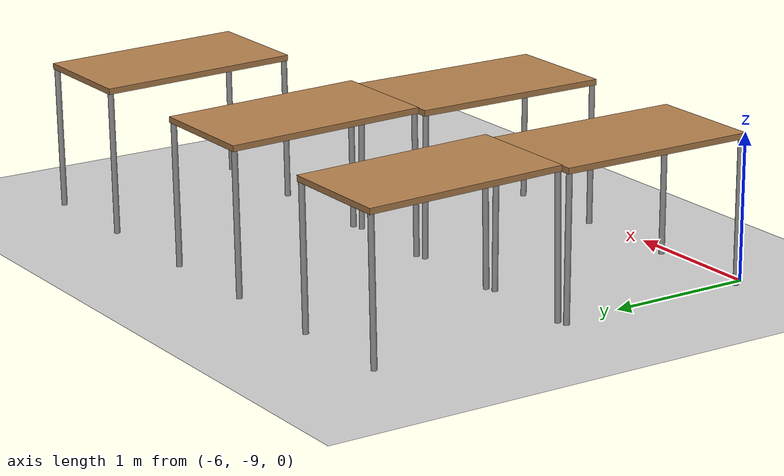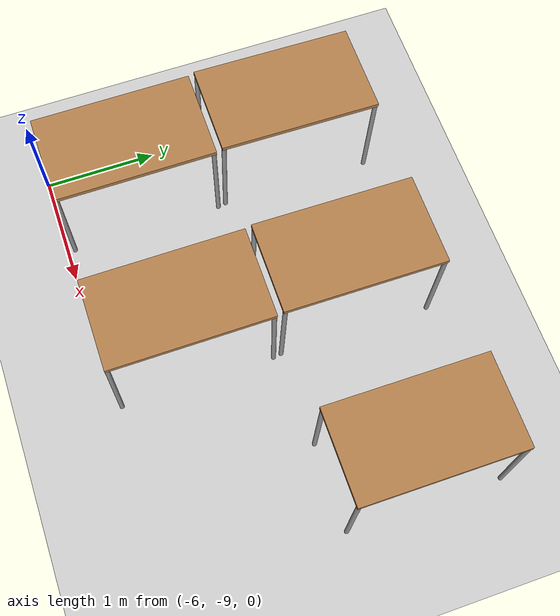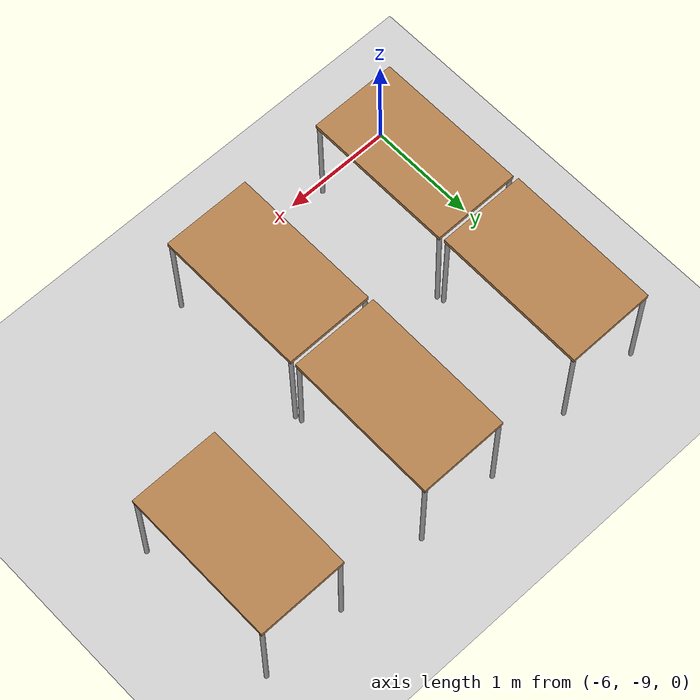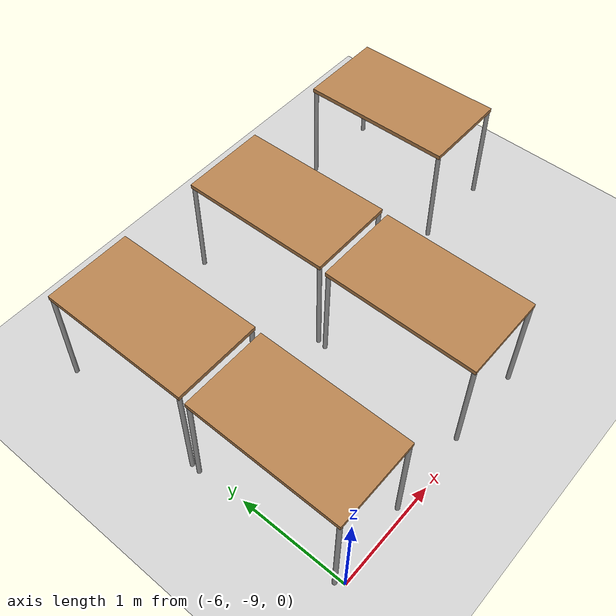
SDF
<sdf version="1.6">
 <world name="default">
  <model name="ground_plane">
   <static>1</static>
   <link name="link">
    <collision name="collision">
     <geometry><plane><normal>0 0 1</normal><size>100 100</size></plane></geometry>
     <surface><friction><ode><mu>100</mu><mu2>50</mu2></ode></friction></surface>
    </collision>
    <visual name="visual">
     <cast_shadows>0</cast_shadows>
     <geometry><plane><normal>0 0 1</normal><size>100 100</size></plane></geometry>
     <material>
      <script><uri>file://media/materials/scripts/gazebo.material</uri><name>Gazebo/Grey</name></script>
     </material>
    </visual>
   </link>
  </model>
  <model name="table_vert_0_clone_clone_clone_0_clone_0_clone_3">
   <link name="link">
    <pose>0 0 0 0 0 -1.56614</pose>
    <inertial>
     <inertia><ixx>1</ixx><ixy>0</ixy><ixz>0</ixz><iyy>1</iyy><iyz>0</iyz><izz>1</izz></inertia>
     <mass>1</mass>
    </inertial>
    <visual name="visual1">
     <pose>0 0 1 0 -0 0</pose>
     <geometry><box><size>1.4 0.8 0.04</size></box></geometry>
     <material>
      <script><uri>file://media/materials/scripts/gazebo.material</uri><name>Gazebo/Wood</name></script>
      <ambient>1 1 1 1</ambient>
      <diffuse>1 1 1 1</diffuse>
      <specular>0.2 0.2 0.2 1</specular>
      <emissive>0 0 0 1</emissive>
     </material>
    </visual>
    <visual name="front_left_leg">
     <pose>0.68 0.38 0.5 0 -0 0</pose>
     <geometry><cylinder><radius>0.02</radius><length>1</length></cylinder></geometry>
     <material>
      <script><uri>file://media/materials/scripts/gazebo.material</uri><name>Gazebo/Grey</name></script>
      <ambient>0.3 0.3 0.3 1</ambient>
      <diffuse>0.7 0.7 0.7 1</diffuse>
      <specular>0.01 0.01 0.01 1</specular>
      <emissive>0 0 0 1</emissive>
     </material>
    </visual>
    <visual name="front_right_leg">
     <pose>0.68 -0.38 0.5 0 -0 0</pose>
     <geometry><cylinder><radius>0.02</radius><length>1</length></cylinder></geometry>
     <material>
      <script><uri>file://media/materials/scripts/gazebo.material</uri><name>Gazebo/Grey</name></script>
      <ambient>0.3 0.3 0.3 1</ambient>
      <diffuse>0.7 0.7 0.7 1</diffuse>
      <specular>0.01 0.01 0.01 1</specular>
      <emissive>0 0 0 1</emissive>
     </material>
    </visual>
    <visual name="back_right_leg">
     <pose>-0.68 -0.38 0.5 0 -0 0</pose>
     <geometry><cylinder><radius>0.02</radius><length>1</length></cylinder></geometry>
     <material>
      <script><uri>file://media/materials/scripts/gazebo.material</uri><name>Gazebo/Grey</name></script>
      <ambient>0.3 0.3 0.3 1</ambient>
      <diffuse>0.7 0.7 0.7 1</diffuse>
      <specular>0.01 0.01 0.01 1</specular>
      <emissive>0 0 0 1</emissive>
     </material>
    </visual>
    <visual name="back_left_leg">
     <pose>-0.68 0.38 0.5 0 -0 0</pose>
     <geometry><cylinder><radius>0.02</radius><length>1</length></cylinder></geometry>
     <material>
      <script><uri>file://media/materials/scripts/gazebo.material</uri><name>Gazebo/Grey</name></script>
      <ambient>0.3 0.3 0.3 1</ambient>
      <diffuse>0.7 0.7 0.7 1</diffuse>
      <specular>0.01 0.01 0.01 1</specular>
      <emissive>0 0 0 1</emissive>
     </material>
    </visual>
    <collision name="surface">
     <pose>0 0 1 0 -0 0</pose>
     <geometry><box><size>1.5 0.8 0.03</size></box></geometry>
     <surface>
      <friction>
       <ode><mu>0.6</mu><mu2>0.6</mu2><fdir1>0 0 0</fdir1><slip1>0</slip1><slip2>0</slip2></ode>
       <torsional>
        <coefficient>1</coefficient>
        <patch_radius>0</patch_radius>
        <surface_radius>0</surface_radius>
        <use_patch_radius>1</use_patch_radius>
        <ode><slip>0</slip></ode>
       </torsional>
      </friction>
      <bounce><restitution_coefficient>0</restitution_coefficient><threshold>1e+06</threshold></bounce>
      <contact>
       <collide_without_contact>0</collide_without_contact>
       <collide_without_contact_bitmask>1</collide_without_contact_bitmask>
       <collide_bitmask>1</collide_bitmask>
       <ode>
        <soft_cfm>0</soft_cfm>
        <soft_erp>0.2</soft_erp>
        <kp>1e+13</kp>
        <kd>1</kd>
        <max_vel>0.01</max_vel>
        <min_depth>0</min_depth>
       </ode>
       <bullet>
        <split_impulse>1</split_impulse>
        <split_impulse_penetration_threshold>-0.01</split_impulse_penetration_threshold>
        <soft_cfm>0</soft_cfm>
        <soft_erp>0.2</soft_erp>
        <kp>1e+13</kp>
        <kd>1</kd>
       </bullet>
      </contact>
     </surface>
    </collision>
    <collision name="front_left_leg">
     <pose>0.68 0.38 0.5 0 -0 0</pose>
     <geometry><cylinder><radius>0.02</radius><length>1</length></cylinder></geometry>
     <surface>
      <friction>
       <ode><mu>1</mu><mu2>1</mu2><fdir1>0 0 0</fdir1><slip1>0</slip1><slip2>0</slip2></ode>
       <torsional>
        <coefficient>1</coefficient>
        <patch_radius>0</patch_radius>
        <surface_radius>0</surface_radius>
        <use_patch_radius>1</use_patch_radius>
        <ode><slip>0</slip></ode>
       </torsional>
      </friction>
      <bounce><restitution_coefficient>0</restitution_coefficient><threshold>1e+06</threshold></bounce>
      <contact>
       <collide_without_contact>0</collide_without_contact>
       <collide_without_contact_bitmask>1</collide_without_contact_bitmask>
       <collide_bitmask>1</collide_bitmask>
       <ode>
        <soft_cfm>0</soft_cfm>
        <soft_erp>0.2</soft_erp>
        <kp>1e+13</kp>
        <kd>1</kd>
        <max_vel>0.01</max_vel>
        <min_depth>0</min_depth>
       </ode>
       <bullet>
        <split_impulse>1</split_impulse>
        <split_impulse_penetration_threshold>-0.01</split_impulse_penetration_threshold>
        <soft_cfm>0</soft_cfm>
        <soft_erp>0.2</soft_erp>
        <kp>1e+13</kp>
        <kd>1</kd>
       </bullet>
      </contact>
     </surface>
    </collision>
    <collision name="front_right_leg">
     <pose>0.68 -0.38 0.5 0 -0 0</pose>
     <geometry><cylinder><radius>0.02</radius><length>1</length></cylinder></geometry>
     <surface>
      <friction>
       <ode><mu>1</mu><mu2>1</mu2><fdir1>0 0 0</fdir1><slip1>0</slip1><slip2>0</slip2></ode>
       <torsional>
        <coefficient>1</coefficient>
        <patch_radius>0</patch_radius>
        <surface_radius>0</surface_radius>
        <use_patch_radius>1</use_patch_radius>
        <ode><slip>0</slip></ode>
       </torsional>
      </friction>
      <bounce><restitution_coefficient>0</restitution_coefficient><threshold>1e+06</threshold></bounce>
      <contact>
       <collide_without_contact>0</collide_without_contact>
       <collide_without_contact_bitmask>1</collide_without_contact_bitmask>
       <collide_bitmask>1</collide_bitmask>
       <ode>
        <soft_cfm>0</soft_cfm>
        <soft_erp>0.2</soft_erp>
        <kp>1e+13</kp>
        <kd>1</kd>
        <max_vel>0.01</max_vel>
        <min_depth>0</min_depth>
       </ode>
       <bullet>
        <split_impulse>1</split_impulse>
        <split_impulse_penetration_threshold>-0.01</split_impulse_penetration_threshold>
        <soft_cfm>0</soft_cfm>
        <soft_erp>0.2</soft_erp>
        <kp>1e+13</kp>
        <kd>1</kd>
       </bullet>
      </contact>
     </surface>
    </collision>
    <collision name="back_right_leg">
     <pose>-0.68 -0.38 0.5 0 -0 0</pose>
     <geometry><cylinder><radius>0.02</radius><length>1</length></cylinder></geometry>
     <surface>
      <friction>
       <ode><mu>1</mu><mu2>1</mu2><fdir1>0 0 0</fdir1><slip1>0</slip1><slip2>0</slip2></ode>
       <torsional>
        <coefficient>1</coefficient>
        <patch_radius>0</patch_radius>
        <surface_radius>0</surface_radius>
        <use_patch_radius>1</use_patch_radius>
        <ode><slip>0</slip></ode>
       </torsional>
      </friction>
      <bounce><restitution_coefficient>0</restitution_coefficient><threshold>1e+06</threshold></bounce>
      <contact>
       <collide_without_contact>0</collide_without_contact>
       <collide_without_contact_bitmask>1</collide_without_contact_bitmask>
       <collide_bitmask>1</collide_bitmask>
       <ode>
        <soft_cfm>0</soft_cfm>
        <soft_erp>0.2</soft_erp>
        <kp>1e+13</kp>
        <kd>1</kd>
        <max_vel>0.01</max_vel>
        <min_depth>0</min_depth>
       </ode>
       <bullet>
        <split_impulse>1</split_impulse>
        <split_impulse_penetration_threshold>-0.01</split_impulse_penetration_threshold>
        <soft_cfm>0</soft_cfm>
        <soft_erp>0.2</soft_erp>
        <kp>1e+13</kp>
        <kd>1</kd>
       </bullet>
      </contact>
     </surface>
    </collision>
    <collision name="back_left_leg">
     <pose>-0.68 0.38 0.5 0 -0 0</pose>
     <geometry><cylinder><radius>0.02</radius><length>1</length></cylinder></geometry>
     <surface>
      <friction>
       <ode><mu>1</mu><mu2>1</mu2><fdir1>0 0 0</fdir1><slip1>0</slip1><slip2>0</slip2></ode>
       <torsional>
        <coefficient>1</coefficient>
        <patch_radius>0</patch_radius>
        <surface_radius>0</surface_radius>
        <use_patch_radius>1</use_patch_radius>
        <ode><slip>0</slip></ode>
       </torsional>
      </friction>
      <bounce><restitution_coefficient>0</restitution_coefficient><threshold>1e+06</threshold></bounce>
      <contact>
       <collide_without_contact>0</collide_without_contact>
       <collide_without_contact_bitmask>1</collide_without_contact_bitmask>
       <collide_bitmask>1</collide_bitmask>
       <ode>
        <soft_cfm>0</soft_cfm>
        <soft_erp>0.2</soft_erp>
        <kp>1e+13</kp>
        <kd>1</kd>
        <max_vel>0.01</max_vel>
        <min_depth>0</min_depth>
       </ode>
       <bullet>
        <split_impulse>1</split_impulse>
        <split_impulse_penetration_threshold>-0.01</split_impulse_penetration_threshold>
        <soft_cfm>0</soft_cfm>
        <soft_erp>0.2</soft_erp>
        <kp>1e+13</kp>
        <kd>1</kd>
       </bullet>
      </contact>
     </surface>
    </collision>
   </link>
   <static>0</static>
   <pose>-2.51001 -6.82268 0.015095 -0.021565 -9.9e-05 -0.004656</pose>
  </model>
  <model name="table_vert_0_clone_clone_clone_0_clone_0_clone_3_clone">
   <link name="link">
    <pose>0 0 0 0 0 -1.56614</pose>
    <inertial>
     <inertia><ixx>1</ixx><ixy>0</ixy><ixz>0</ixz><iyy>1</iyy><iyz>0</iyz><izz>1</izz></inertia>
     <mass>1</mass>
    </inertial>
    <visual name="visual1">
     <pose>0 0 1 0 -0 0</pose>
     <geometry><box><size>1.4 0.8 0.04</size></box></geometry>
     <material>
      <script><uri>file://media/materials/scripts/gazebo.material</uri><name>Gazebo/Wood</name></script>
      <ambient>1 1 1 1</ambient>
      <diffuse>1 1 1 1</diffuse>
      <specular>0.2 0.2 0.2 1</specular>
      <emissive>0 0 0 1</emissive>
     </material>
    </visual>
    <visual name="front_left_leg">
     <pose>0.68 0.38 0.5 0 -0 0</pose>
     <geometry><cylinder><radius>0.02</radius><length>1</length></cylinder></geometry>
     <material>
      <script><uri>file://media/materials/scripts/gazebo.material</uri><name>Gazebo/Grey</name></script>
      <ambient>0.3 0.3 0.3 1</ambient>
      <diffuse>0.7 0.7 0.7 1</diffuse>
      <specular>0.01 0.01 0.01 1</specular>
      <emissive>0 0 0 1</emissive>
     </material>
    </visual>
    <visual name="front_right_leg">
     <pose>0.68 -0.38 0.5 0 -0 0</pose>
     <geometry><cylinder><radius>0.02</radius><length>1</length></cylinder></geometry>
     <material>
      <script><uri>file://media/materials/scripts/gazebo.material</uri><name>Gazebo/Grey</name></script>
      <ambient>0.3 0.3 0.3 1</ambient>
      <diffuse>0.7 0.7 0.7 1</diffuse>
      <specular>0.01 0.01 0.01 1</specular>
      <emissive>0 0 0 1</emissive>
     </material>
    </visual>
    <visual name="back_right_leg">
     <pose>-0.68 -0.38 0.5 0 -0 0</pose>
     <geometry><cylinder><radius>0.02</radius><length>1</length></cylinder></geometry>
     <material>
      <script><uri>file://media/materials/scripts/gazebo.material</uri><name>Gazebo/Grey</name></script>
      <ambient>0.3 0.3 0.3 1</ambient>
      <diffuse>0.7 0.7 0.7 1</diffuse>
      <specular>0.01 0.01 0.01 1</specular>
      <emissive>0 0 0 1</emissive>
     </material>
    </visual>
    <visual name="back_left_leg">
     <pose>-0.68 0.38 0.5 0 -0 0</pose>
     <geometry><cylinder><radius>0.02</radius><length>1</length></cylinder></geometry>
     <material>
      <script><uri>file://media/materials/scripts/gazebo.material</uri><name>Gazebo/Grey</name></script>
      <ambient>0.3 0.3 0.3 1</ambient>
      <diffuse>0.7 0.7 0.7 1</diffuse>
      <specular>0.01 0.01 0.01 1</specular>
      <emissive>0 0 0 1</emissive>
     </material>
    </visual>
    <collision name="surface">
     <pose>0 0 1 0 -0 0</pose>
     <geometry><box><size>1.5 0.8 0.03</size></box></geometry>
     <surface>
      <friction>
       <ode><mu>0.6</mu><mu2>0.6</mu2><fdir1>0 0 0</fdir1><slip1>0</slip1><slip2>0</slip2></ode>
       <torsional>
        <coefficient>1</coefficient>
        <patch_radius>0</patch_radius>
        <surface_radius>0</surface_radius>
        <use_patch_radius>1</use_patch_radius>
        <ode><slip>0</slip></ode>
       </torsional>
      </friction>
      <bounce><restitution_coefficient>0</restitution_coefficient><threshold>1e+06</threshold></bounce>
      <contact>
       <collide_without_contact>0</collide_without_contact>
       <collide_without_contact_bitmask>1</collide_without_contact_bitmask>
       <collide_bitmask>1</collide_bitmask>
       <ode>
        <soft_cfm>0</soft_cfm>
        <soft_erp>0.2</soft_erp>
        <kp>1e+13</kp>
        <kd>1</kd>
        <max_vel>0.01</max_vel>
        <min_depth>0</min_depth>
       </ode>
       <bullet>
        <split_impulse>1</split_impulse>
        <split_impulse_penetration_threshold>-0.01</split_impulse_penetration_threshold>
        <soft_cfm>0</soft_cfm>
        <soft_erp>0.2</soft_erp>
        <kp>1e+13</kp>
        <kd>1</kd>
       </bullet>
      </contact>
     </surface>
    </collision>
    <collision name="front_left_leg">
     <pose>0.68 0.38 0.5 0 -0 0</pose>
     <geometry><cylinder><radius>0.02</radius><length>1</length></cylinder></geometry>
     <surface>
      <friction>
       <ode><mu>1</mu><mu2>1</mu2><fdir1>0 0 0</fdir1><slip1>0</slip1><slip2>0</slip2></ode>
       <torsional>
        <coefficient>1</coefficient>
        <patch_radius>0</patch_radius>
        <surface_radius>0</surface_radius>
        <use_patch_radius>1</use_patch_radius>
        <ode><slip>0</slip></ode>
       </torsional>
      </friction>
      <bounce><restitution_coefficient>0</restitution_coefficient><threshold>1e+06</threshold></bounce>
      <contact>
       <collide_without_contact>0</collide_without_contact>
       <collide_without_contact_bitmask>1</collide_without_contact_bitmask>
       <collide_bitmask>1</collide_bitmask>
       <ode>
        <soft_cfm>0</soft_cfm>
        <soft_erp>0.2</soft_erp>
        <kp>1e+13</kp>
        <kd>1</kd>
        <max_vel>0.01</max_vel>
        <min_depth>0</min_depth>
       </ode>
       <bullet>
        <split_impulse>1</split_impulse>
        <split_impulse_penetration_threshold>-0.01</split_impulse_penetration_threshold>
        <soft_cfm>0</soft_cfm>
        <soft_erp>0.2</soft_erp>
        <kp>1e+13</kp>
        <kd>1</kd>
       </bullet>
      </contact>
     </surface>
    </collision>
    <collision name="front_right_leg">
     <pose>0.68 -0.38 0.5 0 -0 0</pose>
     <geometry><cylinder><radius>0.02</radius><length>1</length></cylinder></geometry>
     <surface>
      <friction>
       <ode><mu>1</mu><mu2>1</mu2><fdir1>0 0 0</fdir1><slip1>0</slip1><slip2>0</slip2></ode>
       <torsional>
        <coefficient>1</coefficient>
        <patch_radius>0</patch_radius>
        <surface_radius>0</surface_radius>
        <use_patch_radius>1</use_patch_radius>
        <ode><slip>0</slip></ode>
       </torsional>
      </friction>
      <bounce><restitution_coefficient>0</restitution_coefficient><threshold>1e+06</threshold></bounce>
      <contact>
       <collide_without_contact>0</collide_without_contact>
       <collide_without_contact_bitmask>1</collide_without_contact_bitmask>
       <collide_bitmask>1</collide_bitmask>
       <ode>
        <soft_cfm>0</soft_cfm>
        <soft_erp>0.2</soft_erp>
        <kp>1e+13</kp>
        <kd>1</kd>
        <max_vel>0.01</max_vel>
        <min_depth>0</min_depth>
       </ode>
       <bullet>
        <split_impulse>1</split_impulse>
        <split_impulse_penetration_threshold>-0.01</split_impulse_penetration_threshold>
        <soft_cfm>0</soft_cfm>
        <soft_erp>0.2</soft_erp>
        <kp>1e+13</kp>
        <kd>1</kd>
       </bullet>
      </contact>
     </surface>
    </collision>
    <collision name="back_right_leg">
     <pose>-0.68 -0.38 0.5 0 -0 0</pose>
     <geometry><cylinder><radius>0.02</radius><length>1</length></cylinder></geometry>
     <surface>
      <friction>
       <ode><mu>1</mu><mu2>1</mu2><fdir1>0 0 0</fdir1><slip1>0</slip1><slip2>0</slip2></ode>
       <torsional>
        <coefficient>1</coefficient>
        <patch_radius>0</patch_radius>
        <surface_radius>0</surface_radius>
        <use_patch_radius>1</use_patch_radius>
        <ode><slip>0</slip></ode>
       </torsional>
      </friction>
      <bounce><restitution_coefficient>0</restitution_coefficient><threshold>1e+06</threshold></bounce>
      <contact>
       <collide_without_contact>0</collide_without_contact>
       <collide_without_contact_bitmask>1</collide_without_contact_bitmask>
       <collide_bitmask>1</collide_bitmask>
       <ode>
        <soft_cfm>0</soft_cfm>
        <soft_erp>0.2</soft_erp>
        <kp>1e+13</kp>
        <kd>1</kd>
        <max_vel>0.01</max_vel>
        <min_depth>0</min_depth>
       </ode>
       <bullet>
        <split_impulse>1</split_impulse>
        <split_impulse_penetration_threshold>-0.01</split_impulse_penetration_threshold>
        <soft_cfm>0</soft_cfm>
        <soft_erp>0.2</soft_erp>
        <kp>1e+13</kp>
        <kd>1</kd>
       </bullet>
      </contact>
     </surface>
    </collision>
    <collision name="back_left_leg">
     <pose>-0.68 0.38 0.5 0 -0 0</pose>
     <geometry><cylinder><radius>0.02</radius><length>1</length></cylinder></geometry>
     <surface>
      <friction>
       <ode><mu>1</mu><mu2>1</mu2><fdir1>0 0 0</fdir1><slip1>0</slip1><slip2>0</slip2></ode>
       <torsional>
        <coefficient>1</coefficient>
        <patch_radius>0</patch_radius>
        <surface_radius>0</surface_radius>
        <use_patch_radius>1</use_patch_radius>
        <ode><slip>0</slip></ode>
       </torsional>
      </friction>
      <bounce><restitution_coefficient>0</restitution_coefficient><threshold>1e+06</threshold></bounce>
      <contact>
       <collide_without_contact>0</collide_without_contact>
       <collide_without_contact_bitmask>1</collide_without_contact_bitmask>
       <collide_bitmask>1</collide_bitmask>
       <ode>
        <soft_cfm>0</soft_cfm>
        <soft_erp>0.2</soft_erp>
        <kp>1e+13</kp>
        <kd>1</kd>
        <max_vel>0.01</max_vel>
        <min_depth>0</min_depth>
       </ode>
       <bullet>
        <split_impulse>1</split_impulse>
        <split_impulse_penetration_threshold>-0.01</split_impulse_penetration_threshold>
        <soft_cfm>0</soft_cfm>
        <soft_erp>0.2</soft_erp>
        <kp>1e+13</kp>
        <kd>1</kd>
       </bullet>
      </contact>
     </surface>
    </collision>
   </link>
   <static>0</static>
   <pose>-4.11064 -8.25191 -3e-06 -4e-06 -2e-06 -0.004657</pose>
  </model>
  <model name="table_vert_0_clone_clone_clone_0_clone_0_clone_3_clone_0">
   <link name="link">
    <pose>0 0 0 0 0 -1.56614</pose>
    <inertial>
     <inertia><ixx>1</ixx><ixy>0</ixy><ixz>0</ixz><iyy>1</iyy><iyz>0</iyz><izz>1</izz></inertia>
     <mass>1</mass>
    </inertial>
    <visual name="visual1">
     <pose>0 0 1 0 -0 0</pose>
     <geometry><box><size>1.4 0.8 0.04</size></box></geometry>
     <material>
      <script><uri>file://media/materials/scripts/gazebo.material</uri><name>Gazebo/Wood</name></script>
      <ambient>1 1 1 1</ambient>
      <diffuse>1 1 1 1</diffuse>
      <specular>0.2 0.2 0.2 1</specular>
      <emissive>0 0 0 1</emissive>
     </material>
    </visual>
    <visual name="front_left_leg">
     <pose>0.68 0.38 0.5 0 -0 0</pose>
     <geometry><cylinder><radius>0.02</radius><length>1</length></cylinder></geometry>
     <material>
      <script><uri>file://media/materials/scripts/gazebo.material</uri><name>Gazebo/Grey</name></script>
      <ambient>0.3 0.3 0.3 1</ambient>
      <diffuse>0.7 0.7 0.7 1</diffuse>
      <specular>0.01 0.01 0.01 1</specular>
      <emissive>0 0 0 1</emissive>
     </material>
    </visual>
    <visual name="front_right_leg">
     <pose>0.68 -0.38 0.5 0 -0 0</pose>
     <geometry><cylinder><radius>0.02</radius><length>1</length></cylinder></geometry>
     <material>
      <script><uri>file://media/materials/scripts/gazebo.material</uri><name>Gazebo/Grey</name></script>
      <ambient>0.3 0.3 0.3 1</ambient>
      <diffuse>0.7 0.7 0.7 1</diffuse>
      <specular>0.01 0.01 0.01 1</specular>
      <emissive>0 0 0 1</emissive>
     </material>
    </visual>
    <visual name="back_right_leg">
     <pose>-0.68 -0.38 0.5 0 -0 0</pose>
     <geometry><cylinder><radius>0.02</radius><length>1</length></cylinder></geometry>
     <material>
      <script><uri>file://media/materials/scripts/gazebo.material</uri><name>Gazebo/Grey</name></script>
      <ambient>0.3 0.3 0.3 1</ambient>
      <diffuse>0.7 0.7 0.7 1</diffuse>
      <specular>0.01 0.01 0.01 1</specular>
      <emissive>0 0 0 1</emissive>
     </material>
    </visual>
    <visual name="back_left_leg">
     <pose>-0.68 0.38 0.5 0 -0 0</pose>
     <geometry><cylinder><radius>0.02</radius><length>1</length></cylinder></geometry>
     <material>
      <script><uri>file://media/materials/scripts/gazebo.material</uri><name>Gazebo/Grey</name></script>
      <ambient>0.3 0.3 0.3 1</ambient>
      <diffuse>0.7 0.7 0.7 1</diffuse>
      <specular>0.01 0.01 0.01 1</specular>
      <emissive>0 0 0 1</emissive>
     </material>
    </visual>
    <collision name="surface">
     <pose>0 0 1 0 -0 0</pose>
     <geometry><box><size>1.5 0.8 0.03</size></box></geometry>
     <surface>
      <friction>
       <ode><mu>0.6</mu><mu2>0.6</mu2><fdir1>0 0 0</fdir1><slip1>0</slip1><slip2>0</slip2></ode>
       <torsional>
        <coefficient>1</coefficient>
        <patch_radius>0</patch_radius>
        <surface_radius>0</surface_radius>
        <use_patch_radius>1</use_patch_radius>
        <ode><slip>0</slip></ode>
       </torsional>
      </friction>
      <bounce><restitution_coefficient>0</restitution_coefficient><threshold>1e+06</threshold></bounce>
      <contact>
       <collide_without_contact>0</collide_without_contact>
       <collide_without_contact_bitmask>1</collide_without_contact_bitmask>
       <collide_bitmask>1</collide_bitmask>
       <ode>
        <soft_cfm>0</soft_cfm>
        <soft_erp>0.2</soft_erp>
        <kp>1e+13</kp>
        <kd>1</kd>
        <max_vel>0.01</max_vel>
        <min_depth>0</min_depth>
       </ode>
       <bullet>
        <split_impulse>1</split_impulse>
        <split_impulse_penetration_threshold>-0.01</split_impulse_penetration_threshold>
        <soft_cfm>0</soft_cfm>
        <soft_erp>0.2</soft_erp>
        <kp>1e+13</kp>
        <kd>1</kd>
       </bullet>
      </contact>
     </surface>
    </collision>
    <collision name="front_left_leg">
     <pose>0.68 0.38 0.5 0 -0 0</pose>
     <geometry><cylinder><radius>0.02</radius><length>1</length></cylinder></geometry>
     <surface>
      <friction>
       <ode><mu>1</mu><mu2>1</mu2><fdir1>0 0 0</fdir1><slip1>0</slip1><slip2>0</slip2></ode>
       <torsional>
        <coefficient>1</coefficient>
        <patch_radius>0</patch_radius>
        <surface_radius>0</surface_radius>
        <use_patch_radius>1</use_patch_radius>
        <ode><slip>0</slip></ode>
       </torsional>
      </friction>
      <bounce><restitution_coefficient>0</restitution_coefficient><threshold>1e+06</threshold></bounce>
      <contact>
       <collide_without_contact>0</collide_without_contact>
       <collide_without_contact_bitmask>1</collide_without_contact_bitmask>
       <collide_bitmask>1</collide_bitmask>
       <ode>
        <soft_cfm>0</soft_cfm>
        <soft_erp>0.2</soft_erp>
        <kp>1e+13</kp>
        <kd>1</kd>
        <max_vel>0.01</max_vel>
        <min_depth>0</min_depth>
       </ode>
       <bullet>
        <split_impulse>1</split_impulse>
        <split_impulse_penetration_threshold>-0.01</split_impulse_penetration_threshold>
        <soft_cfm>0</soft_cfm>
        <soft_erp>0.2</soft_erp>
        <kp>1e+13</kp>
        <kd>1</kd>
       </bullet>
      </contact>
     </surface>
    </collision>
    <collision name="front_right_leg">
     <pose>0.68 -0.38 0.5 0 -0 0</pose>
     <geometry><cylinder><radius>0.02</radius><length>1</length></cylinder></geometry>
     <surface>
      <friction>
       <ode><mu>1</mu><mu2>1</mu2><fdir1>0 0 0</fdir1><slip1>0</slip1><slip2>0</slip2></ode>
       <torsional>
        <coefficient>1</coefficient>
        <patch_radius>0</patch_radius>
        <surface_radius>0</surface_radius>
        <use_patch_radius>1</use_patch_radius>
        <ode><slip>0</slip></ode>
       </torsional>
      </friction>
      <bounce><restitution_coefficient>0</restitution_coefficient><threshold>1e+06</threshold></bounce>
      <contact>
       <collide_without_contact>0</collide_without_contact>
       <collide_without_contact_bitmask>1</collide_without_contact_bitmask>
       <collide_bitmask>1</collide_bitmask>
       <ode>
        <soft_cfm>0</soft_cfm>
        <soft_erp>0.2</soft_erp>
        <kp>1e+13</kp>
        <kd>1</kd>
        <max_vel>0.01</max_vel>
        <min_depth>0</min_depth>
       </ode>
       <bullet>
        <split_impulse>1</split_impulse>
        <split_impulse_penetration_threshold>-0.01</split_impulse_penetration_threshold>
        <soft_cfm>0</soft_cfm>
        <soft_erp>0.2</soft_erp>
        <kp>1e+13</kp>
        <kd>1</kd>
       </bullet>
      </contact>
     </surface>
    </collision>
    <collision name="back_right_leg">
     <pose>-0.68 -0.38 0.5 0 -0 0</pose>
     <geometry><cylinder><radius>0.02</radius><length>1</length></cylinder></geometry>
     <surface>
      <friction>
       <ode><mu>1</mu><mu2>1</mu2><fdir1>0 0 0</fdir1><slip1>0</slip1><slip2>0</slip2></ode>
       <torsional>
        <coefficient>1</coefficient>
        <patch_radius>0</patch_radius>
        <surface_radius>0</surface_radius>
        <use_patch_radius>1</use_patch_radius>
        <ode><slip>0</slip></ode>
       </torsional>
      </friction>
      <bounce><restitution_coefficient>0</restitution_coefficient><threshold>1e+06</threshold></bounce>
      <contact>
       <collide_without_contact>0</collide_without_contact>
       <collide_without_contact_bitmask>1</collide_without_contact_bitmask>
       <collide_bitmask>1</collide_bitmask>
       <ode>
        <soft_cfm>0</soft_cfm>
        <soft_erp>0.2</soft_erp>
        <kp>1e+13</kp>
        <kd>1</kd>
        <max_vel>0.01</max_vel>
        <min_depth>0</min_depth>
       </ode>
       <bullet>
        <split_impulse>1</split_impulse>
        <split_impulse_penetration_threshold>-0.01</split_impulse_penetration_threshold>
        <soft_cfm>0</soft_cfm>
        <soft_erp>0.2</soft_erp>
        <kp>1e+13</kp>
        <kd>1</kd>
       </bullet>
      </contact>
     </surface>
    </collision>
    <collision name="back_left_leg">
     <pose>-0.68 0.38 0.5 0 -0 0</pose>
     <geometry><cylinder><radius>0.02</radius><length>1</length></cylinder></geometry>
     <surface>
      <friction>
       <ode><mu>1</mu><mu2>1</mu2><fdir1>0 0 0</fdir1><slip1>0</slip1><slip2>0</slip2></ode>
       <torsional>
        <coefficient>1</coefficient>
        <patch_radius>0</patch_radius>
        <surface_radius>0</surface_radius>
        <use_patch_radius>1</use_patch_radius>
        <ode><slip>0</slip></ode>
       </torsional>
      </friction>
      <bounce><restitution_coefficient>0</restitution_coefficient><threshold>1e+06</threshold></bounce>
      <contact>
       <collide_without_contact>0</collide_without_contact>
       <collide_without_contact_bitmask>1</collide_without_contact_bitmask>
       <collide_bitmask>1</collide_bitmask>
       <ode>
        <soft_cfm>0</soft_cfm>
        <soft_erp>0.2</soft_erp>
        <kp>1e+13</kp>
        <kd>1</kd>
        <max_vel>0.01</max_vel>
        <min_depth>0</min_depth>
       </ode>
       <bullet>
        <split_impulse>1</split_impulse>
        <split_impulse_penetration_threshold>-0.01</split_impulse_penetration_threshold>
        <soft_cfm>0</soft_cfm>
        <soft_erp>0.2</soft_erp>
        <kp>1e+13</kp>
        <kd>1</kd>
       </bullet>
      </contact>
     </surface>
    </collision>
   </link>
   <static>0</static>
   <pose>-4.11314 -6.82268 0.015105 -0.02158 -9.8e-05 -0.004659</pose>
  </model>
  <model name="table_vert_0_clone_clone_clone_0_clone_0_clone_3_clone_1">
   <link name="link">
    <pose>0 0 0 0 0 -1.56614</pose>
    <inertial>
     <inertia><ixx>1</ixx><ixy>0</ixy><ixz>0</ixz><iyy>1</iyy><iyz>0</iyz><izz>1</izz></inertia>
     <mass>1</mass>
    </inertial>
    <visual name="visual1">
     <pose>0 0 1 0 -0 0</pose>
     <geometry><box><size>1.4 0.8 0.04</size></box></geometry>
     <material>
      <script><uri>file://media/materials/scripts/gazebo.material</uri><name>Gazebo/Wood</name></script>
      <ambient>1 1 1 1</ambient>
      <diffuse>1 1 1 1</diffuse>
      <specular>0.2 0.2 0.2 1</specular>
      <emissive>0 0 0 1</emissive>
     </material>
    </visual>
    <visual name="front_left_leg">
     <pose>0.68 0.38 0.5 0 -0 0</pose>
     <geometry><cylinder><radius>0.02</radius><length>1</length></cylinder></geometry>
     <material>
      <script><uri>file://media/materials/scripts/gazebo.material</uri><name>Gazebo/Grey</name></script>
      <ambient>0.3 0.3 0.3 1</ambient>
      <diffuse>0.7 0.7 0.7 1</diffuse>
      <specular>0.01 0.01 0.01 1</specular>
      <emissive>0 0 0 1</emissive>
     </material>
    </visual>
    <visual name="front_right_leg">
     <pose>0.68 -0.38 0.5 0 -0 0</pose>
     <geometry><cylinder><radius>0.02</radius><length>1</length></cylinder></geometry>
     <material>
      <script><uri>file://media/materials/scripts/gazebo.material</uri><name>Gazebo/Grey</name></script>
      <ambient>0.3 0.3 0.3 1</ambient>
      <diffuse>0.7 0.7 0.7 1</diffuse>
      <specular>0.01 0.01 0.01 1</specular>
      <emissive>0 0 0 1</emissive>
     </material>
    </visual>
    <visual name="back_right_leg">
     <pose>-0.68 -0.38 0.5 0 -0 0</pose>
     <geometry><cylinder><radius>0.02</radius><length>1</length></cylinder></geometry>
     <material>
      <script><uri>file://media/materials/scripts/gazebo.material</uri><name>Gazebo/Grey</name></script>
      <ambient>0.3 0.3 0.3 1</ambient>
      <diffuse>0.7 0.7 0.7 1</diffuse>
      <specular>0.01 0.01 0.01 1</specular>
      <emissive>0 0 0 1</emissive>
     </material>
    </visual>
    <visual name="back_left_leg">
     <pose>-0.68 0.38 0.5 0 -0 0</pose>
     <geometry><cylinder><radius>0.02</radius><length>1</length></cylinder></geometry>
     <material>
      <script><uri>file://media/materials/scripts/gazebo.material</uri><name>Gazebo/Grey</name></script>
      <ambient>0.3 0.3 0.3 1</ambient>
      <diffuse>0.7 0.7 0.7 1</diffuse>
      <specular>0.01 0.01 0.01 1</specular>
      <emissive>0 0 0 1</emissive>
     </material>
    </visual>
    <collision name="surface">
     <pose>0 0 1 0 -0 0</pose>
     <geometry><box><size>1.5 0.8 0.03</size></box></geometry>
     <surface>
      <friction>
       <ode><mu>0.6</mu><mu2>0.6</mu2><fdir1>0 0 0</fdir1><slip1>0</slip1><slip2>0</slip2></ode>
       <torsional>
        <coefficient>1</coefficient>
        <patch_radius>0</patch_radius>
        <surface_radius>0</surface_radius>
        <use_patch_radius>1</use_patch_radius>
        <ode><slip>0</slip></ode>
       </torsional>
      </friction>
      <bounce><restitution_coefficient>0</restitution_coefficient><threshold>1e+06</threshold></bounce>
      <contact>
       <collide_without_contact>0</collide_without_contact>
       <collide_without_contact_bitmask>1</collide_without_contact_bitmask>
       <collide_bitmask>1</collide_bitmask>
       <ode>
        <soft_cfm>0</soft_cfm>
        <soft_erp>0.2</soft_erp>
        <kp>1e+13</kp>
        <kd>1</kd>
        <max_vel>0.01</max_vel>
        <min_depth>0</min_depth>
       </ode>
       <bullet>
        <split_impulse>1</split_impulse>
        <split_impulse_penetration_threshold>-0.01</split_impulse_penetration_threshold>
        <soft_cfm>0</soft_cfm>
        <soft_erp>0.2</soft_erp>
        <kp>1e+13</kp>
        <kd>1</kd>
       </bullet>
      </contact>
     </surface>
    </collision>
    <collision name="front_left_leg">
     <pose>0.68 0.38 0.5 0 -0 0</pose>
     <geometry><cylinder><radius>0.02</radius><length>1</length></cylinder></geometry>
     <surface>
      <friction>
       <ode><mu>1</mu><mu2>1</mu2><fdir1>0 0 0</fdir1><slip1>0</slip1><slip2>0</slip2></ode>
       <torsional>
        <coefficient>1</coefficient>
        <patch_radius>0</patch_radius>
        <surface_radius>0</surface_radius>
        <use_patch_radius>1</use_patch_radius>
        <ode><slip>0</slip></ode>
       </torsional>
      </friction>
      <bounce><restitution_coefficient>0</restitution_coefficient><threshold>1e+06</threshold></bounce>
      <contact>
       <collide_without_contact>0</collide_without_contact>
       <collide_without_contact_bitmask>1</collide_without_contact_bitmask>
       <collide_bitmask>1</collide_bitmask>
       <ode>
        <soft_cfm>0</soft_cfm>
        <soft_erp>0.2</soft_erp>
        <kp>1e+13</kp>
        <kd>1</kd>
        <max_vel>0.01</max_vel>
        <min_depth>0</min_depth>
       </ode>
       <bullet>
        <split_impulse>1</split_impulse>
        <split_impulse_penetration_threshold>-0.01</split_impulse_penetration_threshold>
        <soft_cfm>0</soft_cfm>
        <soft_erp>0.2</soft_erp>
        <kp>1e+13</kp>
        <kd>1</kd>
       </bullet>
      </contact>
     </surface>
    </collision>
    <collision name="front_right_leg">
     <pose>0.68 -0.38 0.5 0 -0 0</pose>
     <geometry><cylinder><radius>0.02</radius><length>1</length></cylinder></geometry>
     <surface>
      <friction>
       <ode><mu>1</mu><mu2>1</mu2><fdir1>0 0 0</fdir1><slip1>0</slip1><slip2>0</slip2></ode>
       <torsional>
        <coefficient>1</coefficient>
        <patch_radius>0</patch_radius>
        <surface_radius>0</surface_radius>
        <use_patch_radius>1</use_patch_radius>
        <ode><slip>0</slip></ode>
       </torsional>
      </friction>
      <bounce><restitution_coefficient>0</restitution_coefficient><threshold>1e+06</threshold></bounce>
      <contact>
       <collide_without_contact>0</collide_without_contact>
       <collide_without_contact_bitmask>1</collide_without_contact_bitmask>
       <collide_bitmask>1</collide_bitmask>
       <ode>
        <soft_cfm>0</soft_cfm>
        <soft_erp>0.2</soft_erp>
        <kp>1e+13</kp>
        <kd>1</kd>
        <max_vel>0.01</max_vel>
        <min_depth>0</min_depth>
       </ode>
       <bullet>
        <split_impulse>1</split_impulse>
        <split_impulse_penetration_threshold>-0.01</split_impulse_penetration_threshold>
        <soft_cfm>0</soft_cfm>
        <soft_erp>0.2</soft_erp>
        <kp>1e+13</kp>
        <kd>1</kd>
       </bullet>
      </contact>
     </surface>
    </collision>
    <collision name="back_right_leg">
     <pose>-0.68 -0.38 0.5 0 -0 0</pose>
     <geometry><cylinder><radius>0.02</radius><length>1</length></cylinder></geometry>
     <surface>
      <friction>
       <ode><mu>1</mu><mu2>1</mu2><fdir1>0 0 0</fdir1><slip1>0</slip1><slip2>0</slip2></ode>
       <torsional>
        <coefficient>1</coefficient>
        <patch_radius>0</patch_radius>
        <surface_radius>0</surface_radius>
        <use_patch_radius>1</use_patch_radius>
        <ode><slip>0</slip></ode>
       </torsional>
      </friction>
      <bounce><restitution_coefficient>0</restitution_coefficient><threshold>1e+06</threshold></bounce>
      <contact>
       <collide_without_contact>0</collide_without_contact>
       <collide_without_contact_bitmask>1</collide_without_contact_bitmask>
       <collide_bitmask>1</collide_bitmask>
       <ode>
        <soft_cfm>0</soft_cfm>
        <soft_erp>0.2</soft_erp>
        <kp>1e+13</kp>
        <kd>1</kd>
        <max_vel>0.01</max_vel>
        <min_depth>0</min_depth>
       </ode>
       <bullet>
        <split_impulse>1</split_impulse>
        <split_impulse_penetration_threshold>-0.01</split_impulse_penetration_threshold>
        <soft_cfm>0</soft_cfm>
        <soft_erp>0.2</soft_erp>
        <kp>1e+13</kp>
        <kd>1</kd>
       </bullet>
      </contact>
     </surface>
    </collision>
    <collision name="back_left_leg">
     <pose>-0.68 0.38 0.5 0 -0 0</pose>
     <geometry><cylinder><radius>0.02</radius><length>1</length></cylinder></geometry>
     <surface>
      <friction>
       <ode><mu>1</mu><mu2>1</mu2><fdir1>0 0 0</fdir1><slip1>0</slip1><slip2>0</slip2></ode>
       <torsional>
        <coefficient>1</coefficient>
        <patch_radius>0</patch_radius>
        <surface_radius>0</surface_radius>
        <use_patch_radius>1</use_patch_radius>
        <ode><slip>0</slip></ode>
       </torsional>
      </friction>
      <bounce><restitution_coefficient>0</restitution_coefficient><threshold>1e+06</threshold></bounce>
      <contact>
       <collide_without_contact>0</collide_without_contact>
       <collide_without_contact_bitmask>1</collide_without_contact_bitmask>
       <collide_bitmask>1</collide_bitmask>
       <ode>
        <soft_cfm>0</soft_cfm>
        <soft_erp>0.2</soft_erp>
        <kp>1e+13</kp>
        <kd>1</kd>
        <max_vel>0.01</max_vel>
        <min_depth>0</min_depth>
       </ode>
       <bullet>
        <split_impulse>1</split_impulse>
        <split_impulse_penetration_threshold>-0.01</split_impulse_penetration_threshold>
        <soft_cfm>0</soft_cfm>
        <soft_erp>0.2</soft_erp>
        <kp>1e+13</kp>
        <kd>1</kd>
       </bullet>
      </contact>
     </surface>
    </collision>
   </link>
   <static>0</static>
   <pose>-5.65833 -8.25191 -1.1e-05 4e-06 3e-06 -0.004654</pose>
  </model>
  <model name="table_vert_0_clone_clone_clone_0_clone_0_clone_3_clone_2">
   <link name="link">
    <pose>0 0 0 0 0 -1.56614</pose>
    <inertial>
     <inertia><ixx>1</ixx><ixy>0</ixy><ixz>0</ixz><iyy>1</iyy><iyz>0</iyz><izz>1</izz></inertia>
     <mass>1</mass>
    </inertial>
    <visual name="visual1">
     <pose>0 0 1 0 -0 0</pose>
     <geometry><box><size>1.4 0.8 0.04</size></box></geometry>
     <material>
      <script><uri>file://media/materials/scripts/gazebo.material</uri><name>Gazebo/Wood</name></script>
      <ambient>1 1 1 1</ambient>
      <diffuse>1 1 1 1</diffuse>
      <specular>0.2 0.2 0.2 1</specular>
      <emissive>0 0 0 1</emissive>
     </material>
    </visual>
    <visual name="front_left_leg">
     <pose>0.68 0.38 0.5 0 -0 0</pose>
     <geometry><cylinder><radius>0.02</radius><length>1</length></cylinder></geometry>
     <material>
      <script><uri>file://media/materials/scripts/gazebo.material</uri><name>Gazebo/Grey</name></script>
      <ambient>0.3 0.3 0.3 1</ambient>
      <diffuse>0.7 0.7 0.7 1</diffuse>
      <specular>0.01 0.01 0.01 1</specular>
      <emissive>0 0 0 1</emissive>
     </material>
    </visual>
    <visual name="front_right_leg">
     <pose>0.68 -0.38 0.5 0 -0 0</pose>
     <geometry><cylinder><radius>0.02</radius><length>1</length></cylinder></geometry>
     <material>
      <script><uri>file://media/materials/scripts/gazebo.material</uri><name>Gazebo/Grey</name></script>
      <ambient>0.3 0.3 0.3 1</ambient>
      <diffuse>0.7 0.7 0.7 1</diffuse>
      <specular>0.01 0.01 0.01 1</specular>
      <emissive>0 0 0 1</emissive>
     </material>
    </visual>
    <visual name="back_right_leg">
     <pose>-0.68 -0.38 0.5 0 -0 0</pose>
     <geometry><cylinder><radius>0.02</radius><length>1</length></cylinder></geometry>
     <material>
      <script><uri>file://media/materials/scripts/gazebo.material</uri><name>Gazebo/Grey</name></script>
      <ambient>0.3 0.3 0.3 1</ambient>
      <diffuse>0.7 0.7 0.7 1</diffuse>
      <specular>0.01 0.01 0.01 1</specular>
      <emissive>0 0 0 1</emissive>
     </material>
    </visual>
    <visual name="back_left_leg">
     <pose>-0.68 0.38 0.5 0 -0 0</pose>
     <geometry><cylinder><radius>0.02</radius><length>1</length></cylinder></geometry>
     <material>
      <script><uri>file://media/materials/scripts/gazebo.material</uri><name>Gazebo/Grey</name></script>
      <ambient>0.3 0.3 0.3 1</ambient>
      <diffuse>0.7 0.7 0.7 1</diffuse>
      <specular>0.01 0.01 0.01 1</specular>
      <emissive>0 0 0 1</emissive>
     </material>
    </visual>
    <collision name="surface">
     <pose>0 0 1 0 -0 0</pose>
     <geometry><box><size>1.5 0.8 0.03</size></box></geometry>
     <surface>
      <friction>
       <ode><mu>0.6</mu><mu2>0.6</mu2><fdir1>0 0 0</fdir1><slip1>0</slip1><slip2>0</slip2></ode>
       <torsional>
        <coefficient>1</coefficient>
        <patch_radius>0</patch_radius>
        <surface_radius>0</surface_radius>
        <use_patch_radius>1</use_patch_radius>
        <ode><slip>0</slip></ode>
       </torsional>
      </friction>
      <bounce><restitution_coefficient>0</restitution_coefficient><threshold>1e+06</threshold></bounce>
      <contact>
       <collide_without_contact>0</collide_without_contact>
       <collide_without_contact_bitmask>1</collide_without_contact_bitmask>
       <collide_bitmask>1</collide_bitmask>
       <ode>
        <soft_cfm>0</soft_cfm>
        <soft_erp>0.2</soft_erp>
        <kp>1e+13</kp>
        <kd>1</kd>
        <max_vel>0.01</max_vel>
        <min_depth>0</min_depth>
       </ode>
       <bullet>
        <split_impulse>1</split_impulse>
        <split_impulse_penetration_threshold>-0.01</split_impulse_penetration_threshold>
        <soft_cfm>0</soft_cfm>
        <soft_erp>0.2</soft_erp>
        <kp>1e+13</kp>
        <kd>1</kd>
       </bullet>
      </contact>
     </surface>
    </collision>
    <collision name="front_left_leg">
     <pose>0.68 0.38 0.5 0 -0 0</pose>
     <geometry><cylinder><radius>0.02</radius><length>1</length></cylinder></geometry>
     <surface>
      <friction>
       <ode><mu>1</mu><mu2>1</mu2><fdir1>0 0 0</fdir1><slip1>0</slip1><slip2>0</slip2></ode>
       <torsional>
        <coefficient>1</coefficient>
        <patch_radius>0</patch_radius>
        <surface_radius>0</surface_radius>
        <use_patch_radius>1</use_patch_radius>
        <ode><slip>0</slip></ode>
       </torsional>
      </friction>
      <bounce><restitution_coefficient>0</restitution_coefficient><threshold>1e+06</threshold></bounce>
      <contact>
       <collide_without_contact>0</collide_without_contact>
       <collide_without_contact_bitmask>1</collide_without_contact_bitmask>
       <collide_bitmask>1</collide_bitmask>
       <ode>
        <soft_cfm>0</soft_cfm>
        <soft_erp>0.2</soft_erp>
        <kp>1e+13</kp>
        <kd>1</kd>
        <max_vel>0.01</max_vel>
        <min_depth>0</min_depth>
       </ode>
       <bullet>
        <split_impulse>1</split_impulse>
        <split_impulse_penetration_threshold>-0.01</split_impulse_penetration_threshold>
        <soft_cfm>0</soft_cfm>
        <soft_erp>0.2</soft_erp>
        <kp>1e+13</kp>
        <kd>1</kd>
       </bullet>
      </contact>
     </surface>
    </collision>
    <collision name="front_right_leg">
     <pose>0.68 -0.38 0.5 0 -0 0</pose>
     <geometry><cylinder><radius>0.02</radius><length>1</length></cylinder></geometry>
     <surface>
      <friction>
       <ode><mu>1</mu><mu2>1</mu2><fdir1>0 0 0</fdir1><slip1>0</slip1><slip2>0</slip2></ode>
       <torsional>
        <coefficient>1</coefficient>
        <patch_radius>0</patch_radius>
        <surface_radius>0</surface_radius>
        <use_patch_radius>1</use_patch_radius>
        <ode><slip>0</slip></ode>
       </torsional>
      </friction>
      <bounce><restitution_coefficient>0</restitution_coefficient><threshold>1e+06</threshold></bounce>
      <contact>
       <collide_without_contact>0</collide_without_contact>
       <collide_without_contact_bitmask>1</collide_without_contact_bitmask>
       <collide_bitmask>1</collide_bitmask>
       <ode>
        <soft_cfm>0</soft_cfm>
        <soft_erp>0.2</soft_erp>
        <kp>1e+13</kp>
        <kd>1</kd>
        <max_vel>0.01</max_vel>
        <min_depth>0</min_depth>
       </ode>
       <bullet>
        <split_impulse>1</split_impulse>
        <split_impulse_penetration_threshold>-0.01</split_impulse_penetration_threshold>
        <soft_cfm>0</soft_cfm>
        <soft_erp>0.2</soft_erp>
        <kp>1e+13</kp>
        <kd>1</kd>
       </bullet>
      </contact>
     </surface>
    </collision>
    <collision name="back_right_leg">
     <pose>-0.68 -0.38 0.5 0 -0 0</pose>
     <geometry><cylinder><radius>0.02</radius><length>1</length></cylinder></geometry>
     <surface>
      <friction>
       <ode><mu>1</mu><mu2>1</mu2><fdir1>0 0 0</fdir1><slip1>0</slip1><slip2>0</slip2></ode>
       <torsional>
        <coefficient>1</coefficient>
        <patch_radius>0</patch_radius>
        <surface_radius>0</surface_radius>
        <use_patch_radius>1</use_patch_radius>
        <ode><slip>0</slip></ode>
       </torsional>
      </friction>
      <bounce><restitution_coefficient>0</restitution_coefficient><threshold>1e+06</threshold></bounce>
      <contact>
       <collide_without_contact>0</collide_without_contact>
       <collide_without_contact_bitmask>1</collide_without_contact_bitmask>
       <collide_bitmask>1</collide_bitmask>
       <ode>
        <soft_cfm>0</soft_cfm>
        <soft_erp>0.2</soft_erp>
        <kp>1e+13</kp>
        <kd>1</kd>
        <max_vel>0.01</max_vel>
        <min_depth>0</min_depth>
       </ode>
       <bullet>
        <split_impulse>1</split_impulse>
        <split_impulse_penetration_threshold>-0.01</split_impulse_penetration_threshold>
        <soft_cfm>0</soft_cfm>
        <soft_erp>0.2</soft_erp>
        <kp>1e+13</kp>
        <kd>1</kd>
       </bullet>
      </contact>
     </surface>
    </collision>
    <collision name="back_left_leg">
     <pose>-0.68 0.38 0.5 0 -0 0</pose>
     <geometry><cylinder><radius>0.02</radius><length>1</length></cylinder></geometry>
     <surface>
      <friction>
       <ode><mu>1</mu><mu2>1</mu2><fdir1>0 0 0</fdir1><slip1>0</slip1><slip2>0</slip2></ode>
       <torsional>
        <coefficient>1</coefficient>
        <patch_radius>0</patch_radius>
        <surface_radius>0</surface_radius>
        <use_patch_radius>1</use_patch_radius>
        <ode><slip>0</slip></ode>
       </torsional>
      </friction>
      <bounce><restitution_coefficient>0</restitution_coefficient><threshold>1e+06</threshold></bounce>
      <contact>
       <collide_without_contact>0</collide_without_contact>
       <collide_without_contact_bitmask>1</collide_without_contact_bitmask>
       <collide_bitmask>1</collide_bitmask>
       <ode>
        <soft_cfm>0</soft_cfm>
        <soft_erp>0.2</soft_erp>
        <kp>1e+13</kp>
        <kd>1</kd>
        <max_vel>0.01</max_vel>
        <min_depth>0</min_depth>
       </ode>
       <bullet>
        <split_impulse>1</split_impulse>
        <split_impulse_penetration_threshold>-0.01</split_impulse_penetration_threshold>
        <soft_cfm>0</soft_cfm>
        <soft_erp>0.2</soft_erp>
        <kp>1e+13</kp>
        <kd>1</kd>
       </bullet>
      </contact>
     </surface>
    </collision>
   </link>
   <static>0</static>
   <pose>-5.66058 -6.82269 0.015104 -0.021579 -9.8e-05 -0.004653</pose>
  </model>
 </world>
</sdf>
